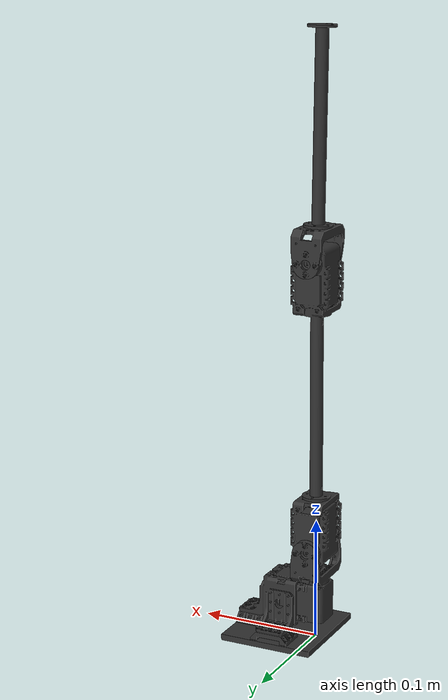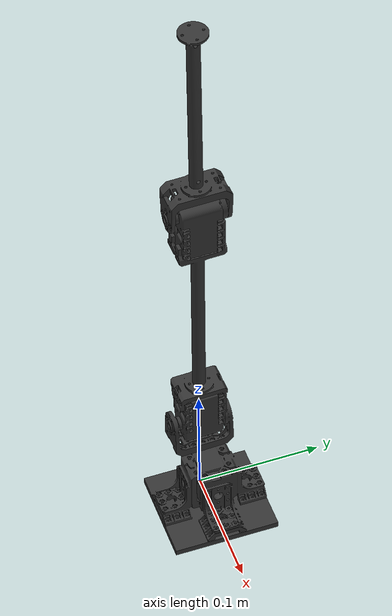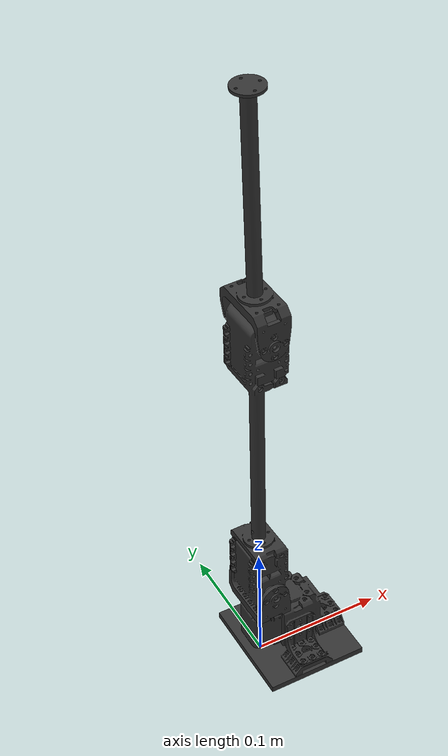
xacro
<?xml version="1.0"?>
<!-- Manipulador Serial 3GDL -->
<robot name="serial3" xmlns:xacro="http://www.ros.org/wiki/xacro">

    <!-- Hardware de ros2_control: mock (por defecto) | gazebo | real (fase 3) -->
    <xacro:arg name="hw" default="mock" />
    <!-- YAML de controladores que carga Gazebo (solo se usa con hw:=gazebo) -->
    <xacro:arg name="controllers_file" default="" />

    <!-- Importamos el archivo de colores para RViz/Gazebo -->
    <xacro:include filename="$(find serial3_description)/urdf/materials.xacro" />
    <!-- Importamos las interfaces de ros2_control de las juntas -->
    <xacro:include filename="$(find serial3_description)/urdf/serial3.ros2_control.xacro" />
    <xacro:serial3_ros2_control hw="$(arg hw)" controllers_file="$(arg controllers_file)" />

    <!-- Declaramos un "dummy" para fijar 'base_link' en Gazebo -->
    <link name="world" />
    <joint name="world_to_base_joint" type="fixed">
        <parent link="world" />
        <child link="base_link" />
    </joint>

    <!-- Declaramos el primer eslabón del robot -->
    <link name="base_link">

        <collision>
            <origin xyz="0 0 0" rpy="0 0 0" />
            <geometry>
                <mesh filename="package://serial3_description/meshes/collision/base_link.STL" />
            </geometry>
        </collision>

        <visual>
            <origin xyz="0 0 0" rpy="0 0 0" />
            <geometry>
                <mesh filename="package://serial3_description/meshes/visual/base_link.STL" />
            </geometry>
            <material name="grey" />
        </visual>

        <inertial>
            <origin xyz="0.021781 -5.6862E-07 0.020002" rpy="0 0 0" />
            <mass value="0.099185" />
            <inertia
                ixx="2.717E-05"
                ixy="1.1961E-10"
                ixz="8.6306E-08"
                iyy="2.9447E-05"
                iyz="1.1648E-12"
                izz="4.9838E-05" />
        </inertial>
    </link>

    <!-- Definimos a la junta que une al eslabón anterior con el siguiente -->
    <joint name="base_to_e1_joint" type="revolute">
        <parent link="base_link" />
        <child link="e1_link" />
        <origin xyz="0 0 0.04815" rpy="0 0 0.025007" />
        <axis xyz="0 0 -1" />
        <limit lower="-1.5708" upper="1.5708" effort="77" velocity="1.43" />
        <dynamics damping="0.7"/>
    </joint>

    <!-- Declaramos al segundo eslabón y su junta -->
    <link name="e1_link">

        <collision>
            <origin xyz="0 0 0" rpy="0 0 0" />
            <geometry>
                <mesh filename="package://serial3_description/meshes/collision/e1_link.STL" />
            </geometry>
        </collision>

        <visual>
            <origin xyz="0 0 0" rpy="0 0 0" />
            <geometry>
                <mesh filename="package://serial3_description/meshes/visual/e1_link.STL" />
            </geometry>
            <material name="grey" />
        </visual>

        <inertial>
            <origin xyz="1.5367E-06 0.0020022 0.016219" rpy="0 0 0" />
            <mass value="0.010841" />
            <inertia
                ixx="3.3452E-06"
                ixy="-1.561E-17"
                ixz="1.5694E-10"
                iyy="1.3848E-06"
                iyz="6.927E-18"
                izz="3.0336E-06" />
        </inertial>
    </link>

    <joint name="e1_to_e2_joint" type="revolute">
        <parent link="e1_link" />
        <child link="e2_link" />
        <origin xyz="0 0.00025 0.0305" rpy="1.5708 -1.5679 0" />
        <axis xyz="0 0 -1" />
        <limit lower="-1.5708" upper="1.5708" effort="133" velocity="1.29" />
        <dynamics damping="0.7"/>
    </joint>

    <!-- Declaramos el tercer eslabón y su junta-->
    <link name="e2_link">
        <collision>
            <origin xyz="0 0 0" rpy="0 0 0" />
            <geometry>
                <mesh filename="package://serial3_description/meshes/collision/e2_link.STL" />
            </geometry>
        </collision>

        <visual>
            <origin xyz="0 0 0" rpy="0 0 0" />
            <geometry>
                <mesh filename="package://serial3_description/meshes/visual/e2_link.STL" />
            </geometry>
            <material name="grey" />
        </visual>

        <inertial>
            <origin xyz="0.1205 9.6594E-07 -0.00070992" rpy="0 0 0" />
            <mass value="0.094125" />
            <inertia
                ixx="8.4992E-06"
                ixy="1.9769E-11"
                ixz="-6.3555E-14"
                iyy="2.1047E-05"
                iyz="-7.3048E-15"
                izz="2.3013E-05" />
        </inertial>
    </link>

    <joint name="e2_to_e3_joint" type="revolute">
        <parent link="e2_link" />
        <child link="e3_link" />
        <origin xyz="0.237 0 0.00025" rpy="0 0 0.017666" />
        <axis xyz="0 0 -1" />
        <limit lower="-1.5708" upper="1.5708" effort="66" velocity="2.13" />
        <dynamics damping="0.7"/>
    </joint>

    <!-- Declaramos al a cuarto eslabón y su junta -->
    <link name="e3_link">
        <collision>
            <origin xyz="0 0 0" rpy="0 0 0" />
            <geometry>
                <mesh filename="package://serial3_description/meshes/collision/e3_link.STL" />
            </geometry>
        </collision>

        <visual>
            <origin xyz="0 0 0" rpy="0 0 0" />
            <geometry>
                <mesh filename="package://serial3_description/meshes/visual/e3_link.STL" />
            </geometry>
            <material name="grey" />
        </visual>

        <inertial>
            <origin xyz="0.028382 3.6464E-06 0.00077286" rpy="0 0 0" />
            <mass value="0.010442" />
            <inertia
                ixx="2.9789E-06"
                ixy="-1.5694E-10"
                ixz="5.7337E-14"
                iyy="5.9628E-06"
                iyz="1.0873E-15"
                izz="3.9543E-06" />
        </inertial>
    </link>

    <joint name="e3_to_end_effector_joint" type="fixed">
        <parent link="e3_link" />
        <child link="end_effector" />
        <origin xyz="0.18 0 0" rpy="0 0 0" />
         <axis xyz="0 0 0" />
         <dynamics damping="0.7"/>
    </joint>

    <!-- Declaramos al efector final del robot -->
    <link name="end_effector">
        <collision>
            <origin xyz="0 0 0" rpy="0 0 0" />
            <geometry>
                <mesh filename="package://serial3_description/meshes/collision/end_effector.STL" />
            </geometry>
        </collision>

        <visual>
            <origin xyz="0 0 0" rpy="0 0 0" />
            <geometry>
                <mesh filename="package://serial3_description/meshes/visual/end_effector.STL" />
            </geometry>
            <material name="grey" />
        </visual>

        <inertial>
            <origin xyz="-0.0033957 -1.8646E-10 -1.3153E-09" rpy="0 0 0" />
            <mass value="0.0013531" />
            <inertia
                ixx="6.1653E-08"
                ixy="-6.4106E-16"
                ixz="-6.4728E-15"
                iyy="4.7314E-08"
                iyz="-8.7372E-15"
                izz="4.683E-08" />
        </inertial>
    </link>

</robot>

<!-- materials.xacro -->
<!-- Definicion de materiales y colores para Simulación/Visualización -->
<robot>

  <material name="black">
    <color rgba="0.0 0.0 0.0 1.0"/>
  </material>

  <material name="blue">
    <color rgba="0.0 0.0 0.8 1.0"/>
  </material>

  <material name="grey">
    <color rgba="0.2 0.2 0.2 1.0"/>
  </material>

  <material name="brown">
    <color rgba="${222/255} ${207/255} ${195/255} 1.0"/>
  </material>

  <material name="red">
    <color rgba="0.8 0.0 0.0 1.0"/>
  </material>

  <material name="white">
    <color rgba="1.0 1.0 1.0 1.0"/>
  </material>

</robot>
